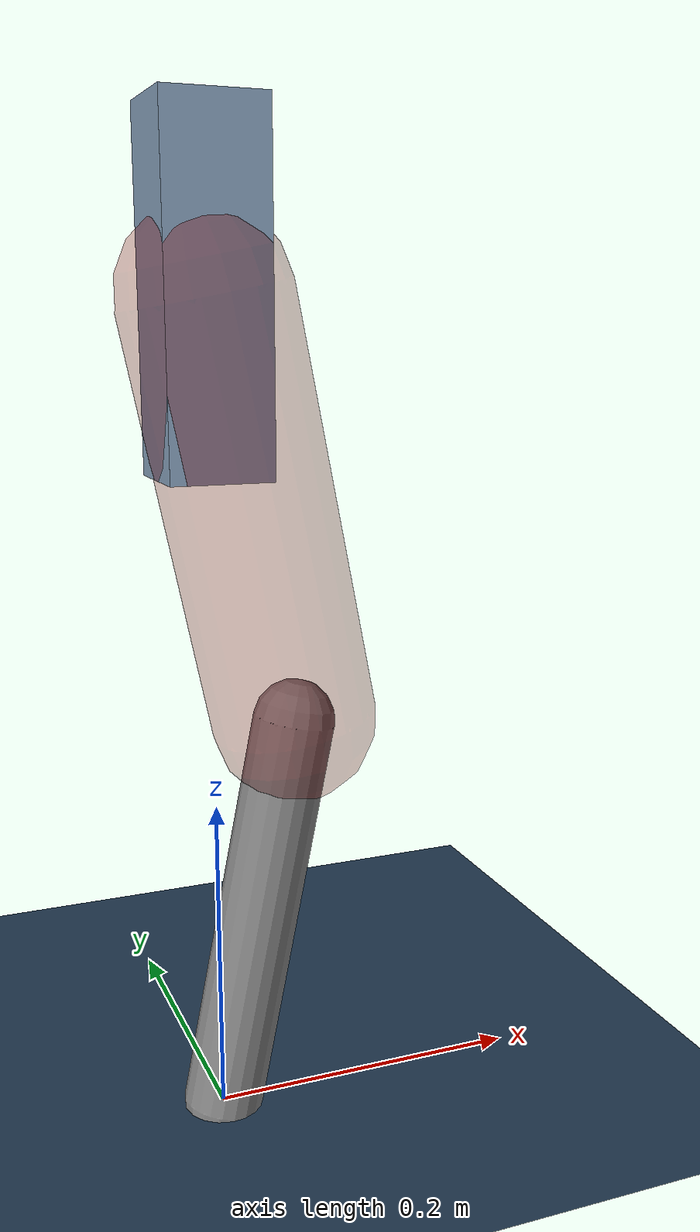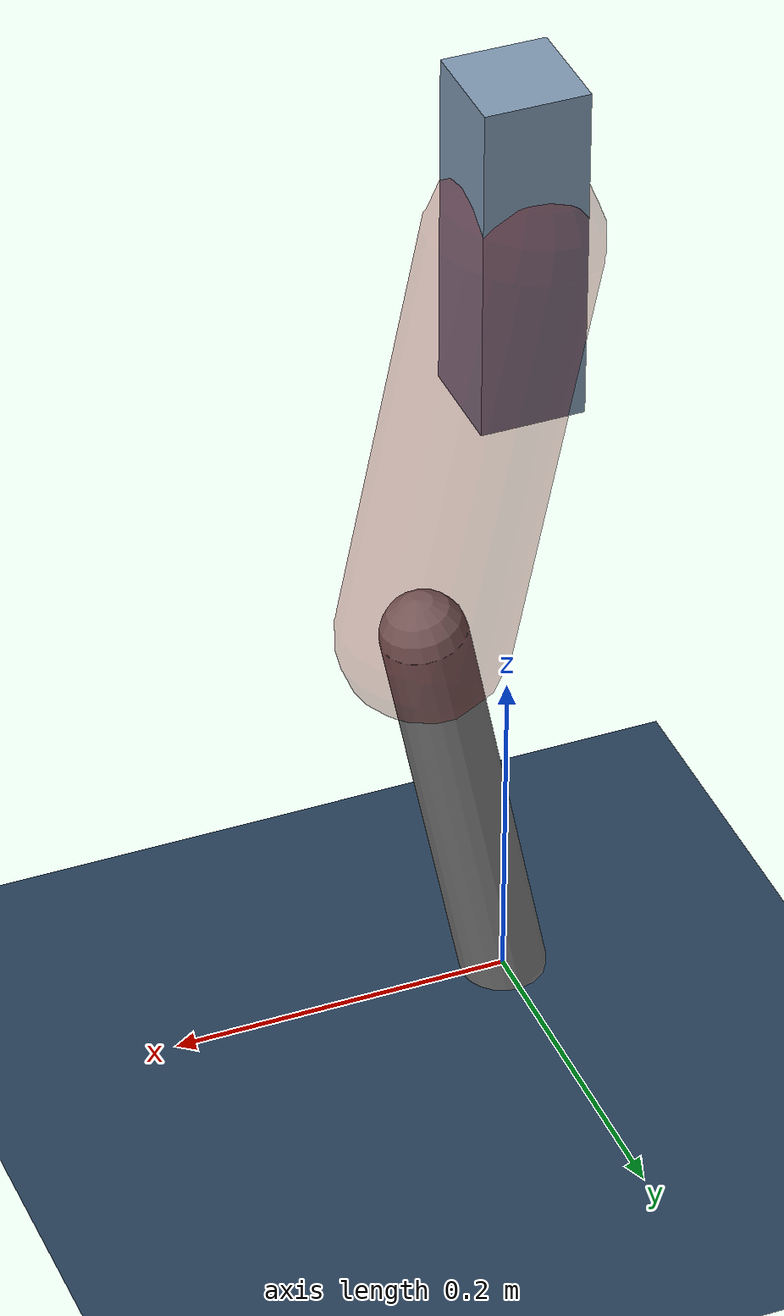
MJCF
<mujoco model="Hopper2D">
	<compiler inertiafromgeom="true" angle="radian" />
	<option timestep="0.001" integrator="implicit" cone="elliptic" solver="Newton" tolerance="1e-10" />

	<default>
		<geom contype="1" conaffinity="1" condim="3" friction="2 0.005 0.0001" solref="0.005 1" />
		<joint limited="true" damping="0.1" />
	</default>

	<asset>
		<texture name="skybox" type="skybox" builtin="gradient" rgb1=".4 .6 .8" rgb2="0 0 0" width="800" height="800" />
		<texture name="grid" type="2d" builtin="checker" rgb1=".1 .2 .3" rgb2=".2 .3 .4" width="300" height="300" mark="edge" markrgb=".2 .3 .4" />
		<material name="ground" texture="grid" texrepeat="1 1" texuniform="true" reflectance="0.1" />
		<material name="leg" rgba="0.5 0.6 0.7 1" />
	</asset>

	<worldbody>

		<geom name="floor" type="plane" size="5 5 0.25" material="ground" />

		<light directional="false" diffuse="0.8 0.8 0.8" specular="0.3 0.3 0.3" pos="0 0 2" dir="0 0 -1" />
		<light mode="targetbodycom" target="base" directional="false" diffuse="0.8 0.8 0.8" specular="0.3 0.3 0.3" pos="0 0 2" dir="0 0 -1" />

		<camera name="fixed" pos="0 -2 1" xyaxes="1 0 0 0 0 1" />
		<camera name="tracking" mode="trackcom" pos="0 -3 1" />

		<body name="root" pos="0 0 0.4974789618653004">
			<joint name="slide_x" type="slide" axis="1 0 0" range="-100 100" />
			<joint name="slide_z" type="slide" axis="0 0 1" range="0 10" />

			<body name="base" pos="0 0 0">
				<geom name="torso" type="box" size="0.03 0.03 0.1" mass="2.824" material="leg" />

				<body name="link1" pos="0 0 0" euler="0 1.3709603410431837 0">
					<joint type="hinge" axis="0 -1 0" pos="0 0 0" name="hinge1" limited="true" range="-3.14 3.14" stiffness="0" damping="0.1" />
					<geom name="thigh" type="capsule" fromto="0 0 0 0.25249876085109485 0 0" size="0.05" rgba="0.5 0 0 0.3" mass="0.8628967782128466" />

					<body name="link2" pos="0.25249876085109485 0 0" euler="0 0.397701272747929 0">
						<joint type="hinge" axis="0 -1 0" pos="0 0 0" name="hinge2" limited="true" range="-3.14 3.14" stiffness="0" damping="0.1" />
						<geom name="shank" type="capsule" fromto="0 0 0 0.2549802010142055 0 0" size="0.025" mass="0.4465841608113644" />

					</body>
				</body>
			</body>
		</body>
	</worldbody>

	<actuator>
		<motor name="torque1" joint="hinge1" ctrlrange="-165.697220688106 165.697220688106" ctrllimited="true" gear="1" />
		<motor name="torque2" joint="hinge2" ctrlrange="-103.33003956237663 103.33003956237663" ctrllimited="true" gear="1" />
	</actuator>
</mujoco>
